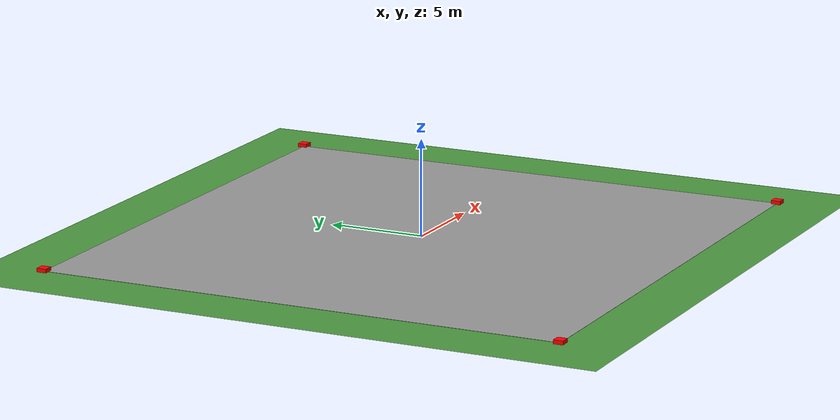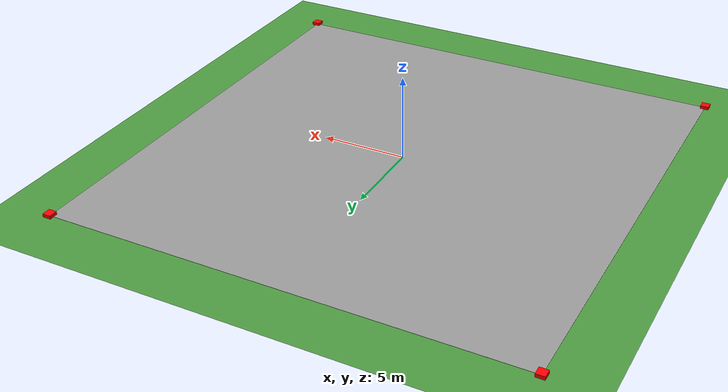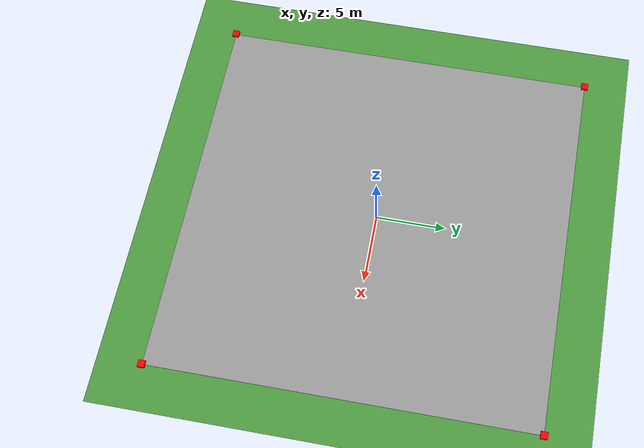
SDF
<?xml version="1.0" ?>
<sdf version="1.6">
  <world name="precision_landing_world">
    <!-- Physics settings -->
    <physics type="ode">
      <max_step_size>0.001</max_step_size>
      <real_time_factor>1.0</real_time_factor>
      <real_time_update_rate>1000</real_time_update_rate>
      <ode>
        <solver>
          <type>quick</type>
          <iters>100</iters>
          <sor>1.3</sor>
        </solver>
      </ode>
    </physics>

    <!-- Scene lighting -->
    <scene>
      <ambient>0.4 0.4 0.4 1</ambient>
      <background>0.7 0.7 0.7 1</background>
      <shadows>true</shadows>
    </scene>

    <!-- Sun light source -->
    <include>
      <uri>model://sun</uri>
    </include>

    <!-- Ground plane -->
    <model name="ground_plane">
      <static>true</static>
      <link name="link">
        <collision name="collision">
          <geometry>
            <plane>
              <normal>0 0 1</normal>
              <size>50 50</size>
            </plane>
          </geometry>
          <surface>
            <friction>
              <ode>
                <mu>1</mu>
                <mu2>1</mu2>
              </ode>
            </friction>
          </surface>
        </collision>
        <visual name="visual">
          <cast_shadows>false</cast_shadows>
          <geometry>
            <plane>
              <normal>0 0 1</normal>
              <size>50 50</size>
            </plane>
          </geometry>
          <material>
            <script>
              <uri>file://media/materials/scripts/gazebo.material</uri>
              <name>Gazebo/Grass</name>
            </script>
          </material>
        </visual>
      </link>
    </model>

    <!-- 30x30 yard landing zone -->
    <model name="landing_zone">
      <static>true</static>
      <pose>0 0 0.01 0 0 0</pose>
      <link name="link">
        <collision name="collision">
          <geometry>
            <box>
              <size>27.4 27.4 0.01</size>
            </box>
          </geometry>
        </collision>
        <visual name="visual">
          <cast_shadows>false</cast_shadows>
          <geometry>
            <box>
              <size>27.4 27.4 0.01</size>
            </box>
          </geometry>
          <material>
            <script>
              <uri>file://media/materials/scripts/gazebo.material</uri>
              <name>Gazebo/Grey</name>
            </script>
            <ambient>0.8 0.8 0.8 1</ambient>
            <diffuse>0.8 0.8 0.8 1</diffuse>
          </material>
        </visual>
      </link>
    </model>

    <!-- Boundary markers for visual reference -->
    <model name="boundary_marker_1">
      <static>true</static>
      <pose>13.7 13.7 0.1 0 0 0</pose>
      <link name="link">
        <visual name="visual">
          <geometry>
            <box><size>0.5 0.5 0.2</size></box>
          </geometry>
          <material><ambient>1 0 0 1</ambient></material>
        </visual>
      </link>
    </model>

    <model name="boundary_marker_2">
      <static>true</static>
      <pose>-13.7 13.7 0.1 0 0 0</pose>
      <link name="link">
        <visual name="visual">
          <geometry>
            <box><size>0.5 0.5 0.2</size></box>
          </geometry>
          <material><ambient>1 0 0 1</ambient></material>
        </visual>
      </link>
    </model>

    <model name="boundary_marker_3">
      <static>true</static>
      <pose>13.7 -13.7 0.1 0 0 0</pose>
      <link name="link">
        <visual name="visual">
          <geometry>
            <box><size>0.5 0.5 0.2</size></box>
          </geometry>
          <material><ambient>1 0 0 1</ambient></material>
        </visual>
      </link>
    </model>

    <model name="boundary_marker_4">
      <static>true</static>
      <pose>-13.7 -13.7 0.1 0 0 0</pose>
      <link name="link">
        <visual name="visual">
          <geometry>
            <box><size>0.5 0.5 0.2</size></box>
          </geometry>
          <material><ambient>1 0 0 1</ambient></material>
        </visual>
      </link>
    </model>

    <!-- ArUco marker models will be included by reference during simulation startup -->
    <!-- These will be defined separately and spawned procedurally -->

    <!-- Wind plugin for realistic flight conditions -->
    <plugin name="wind" filename="libgazebo_ros_wind.so">
      <frameId>world</frameId>
      <robotNamespace>/wind</robotNamespace>
      <windVelocityMean>2.0</windVelocityMean>
      <windVelocityMax>5.0</windVelocityMax>
      <windVelocityVariance>1.0</windVelocityVariance>
      <windDirection>1 1 0</windDirection>
      <windGustDirection>0 1 0</windGustDirection>
      <windGustDuration>2</windGustDuration>
      <windGustStart>10</windGustStart>
      <windGustVelocityMean>3</windGustVelocityMean>
      <windGustVelocityMax>10.0</windGustVelocityMax>
      <windGustVelocityVariance>2</windGustVelocityVariance>
    </plugin>
  </world>
</sdf>
